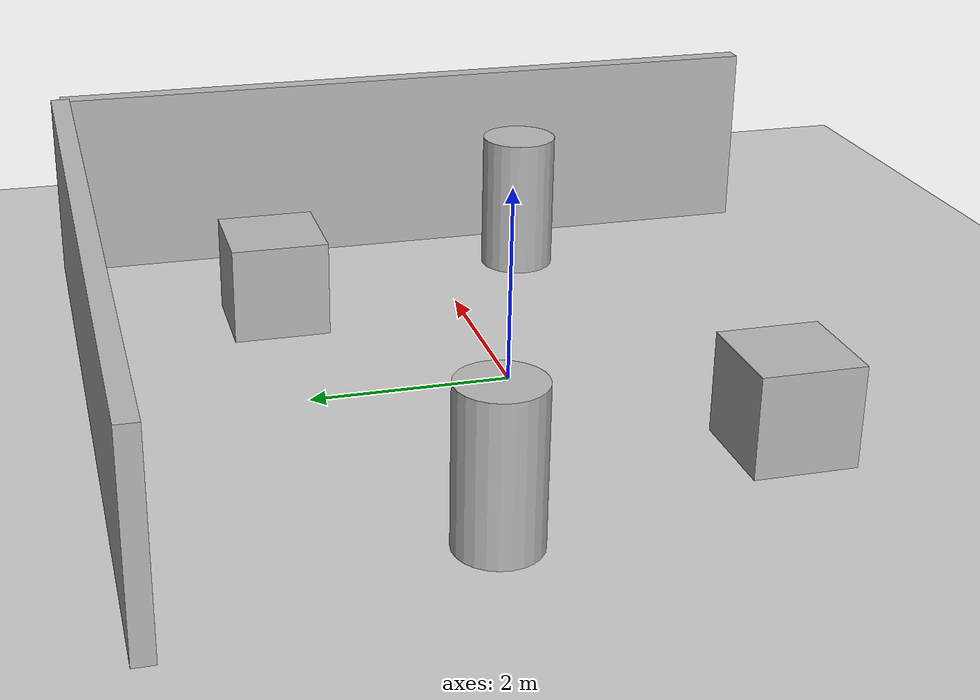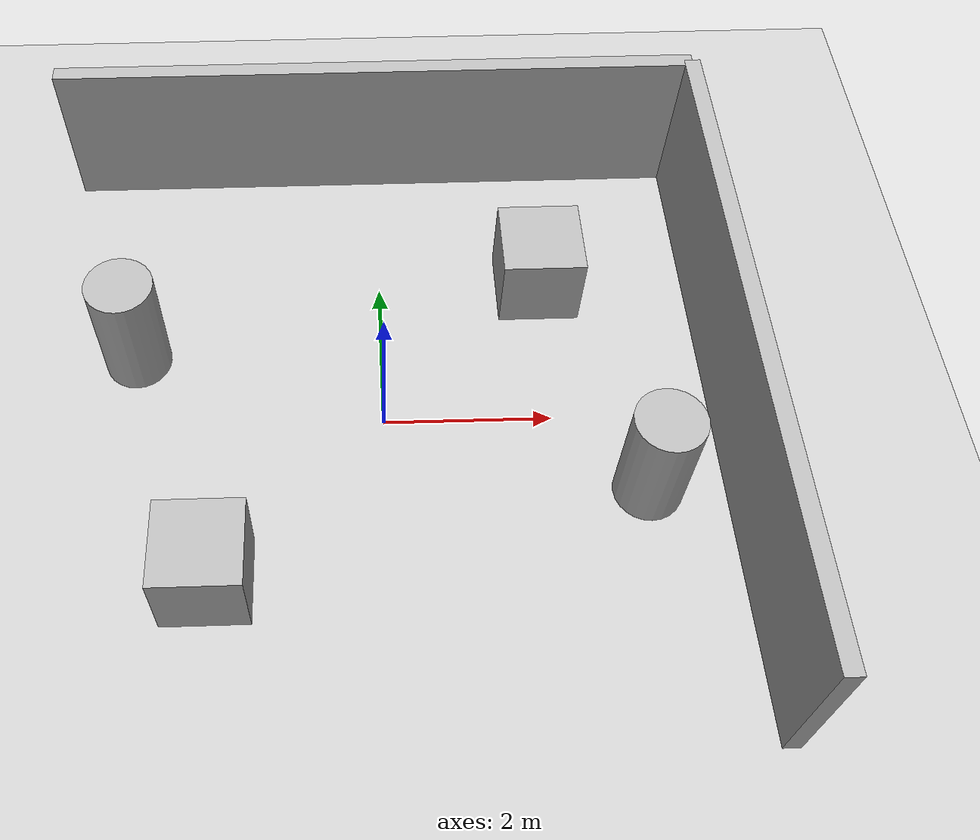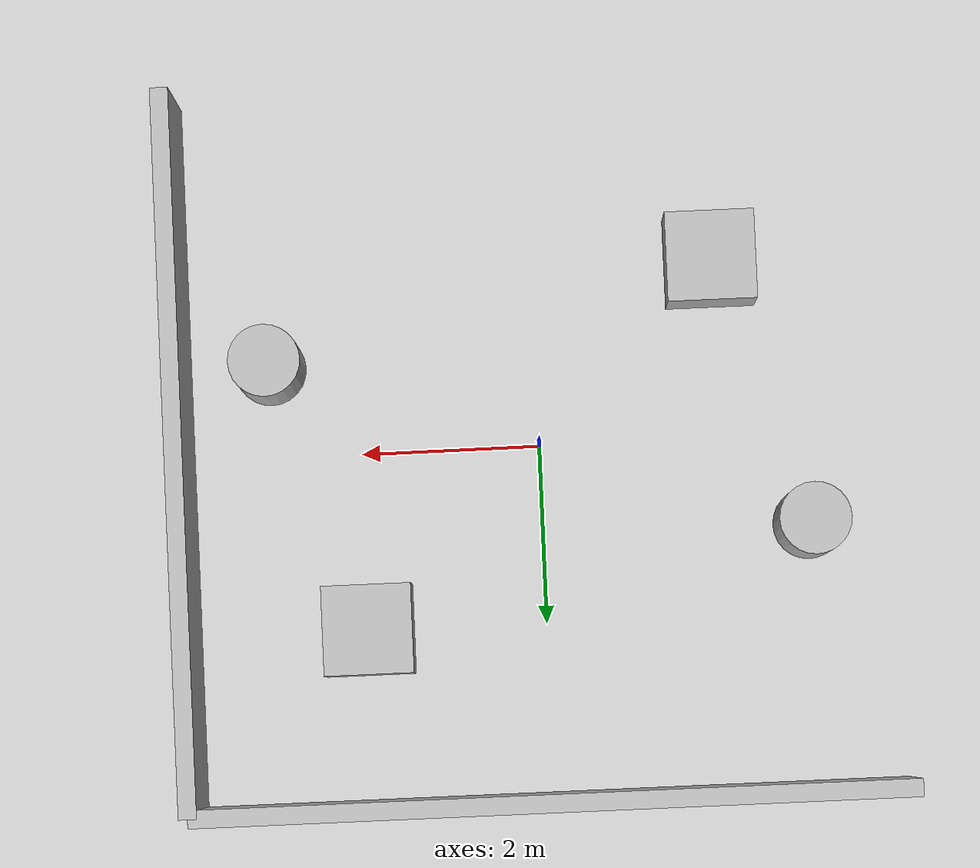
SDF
<?xml version="1.0" ?>
<sdf version="1.6">
  <world name="obstacle_world">

    <!-- Sun -->
    <include>
      <uri>model://sun</uri>
    </include>

    <!-- Ground -->
    <include>
      <uri>model://ground_plane</uri>
    </include>

    <!-- BOX OBSTACLES -->

    <model name="box1">
      <pose>2 2 0.5 0 0 0</pose>
      <link name="link">
        <collision name="collision">
          <geometry>
            <box>
              <size>1 1 1</size>
            </box>
          </geometry>
        </collision>

        <visual name="visual">
          <geometry>
            <box>
              <size>1 1 1</size>
            </box>
          </geometry>
        </visual>
      </link>
    </model>

    <model name="box2">
      <pose>-2 -2 0.5 0 0 0</pose>
      <link name="link">
        <collision name="collision">
          <geometry>
            <box>
              <size>1 1 1</size>
            </box>
          </geometry>
        </collision>

        <visual name="visual">
          <geometry>
            <box>
              <size>1 1 1</size>
            </box>
          </geometry>
        </visual>
      </link>
    </model>

    <!-- CYLINDER PILLARS -->

    <model name="pillar1">
      <pose>3 -1 0.75 0 0 0</pose>
      <link name="link">
        <collision name="collision">
          <geometry>
            <cylinder>
              <radius>0.4</radius>
              <length>1.5</length>
            </cylinder>
          </geometry>
        </collision>

        <visual name="visual">
          <geometry>
            <cylinder>
              <radius>0.4</radius>
              <length>1.5</length>
            </cylinder>
          </geometry>
        </visual>
      </link>
    </model>

    <model name="pillar2">
      <pose>-3 1 0.75 0 0 0</pose>
      <link name="link">
        <collision name="collision">
          <geometry>
            <cylinder>
              <radius>0.4</radius>
              <length>1.5</length>
            </cylinder>
          </geometry>
        </collision>

        <visual name="visual">
          <geometry>
            <cylinder>
              <radius>0.4</radius>
              <length>1.5</length>
            </cylinder>
          </geometry>
        </visual>
      </link>
    </model>

    <!-- WALLS (MAZE TYPE) -->

    <model name="wall1">
      <pose>0 4 1 0 0 0</pose>
      <link name="link">
        <collision name="collision">
          <geometry>
            <box>
              <size>8 0.2 2</size>
            </box>
          </geometry>
        </collision>

        <visual name="visual">
          <geometry>
            <box>
              <size>8 0.2 2</size>
            </box>
          </geometry>
        </visual>
      </link>
    </model>

    <model name="wall2">
      <pose>4 0 1 0 0 0</pose>
      <link name="link">
        <collision name="collision">
          <geometry>
            <box>
              <size>0.2 8 2</size>
            </box>
          </geometry>
        </collision>

        <visual name="visual">
          <geometry>
            <box>
              <size>0.2 8 2</size>
            </box>
          </geometry>
        </visual>
      </link>
    </model>

  </world>
</sdf>
